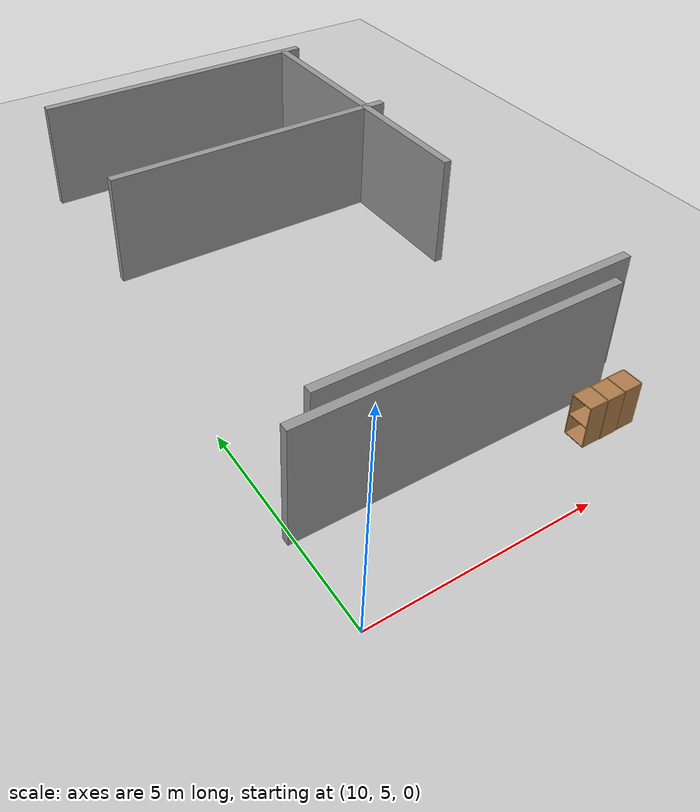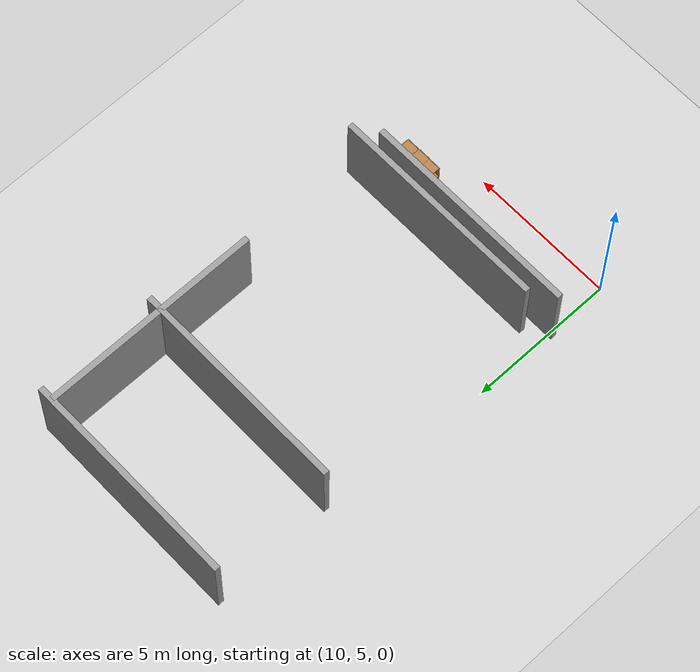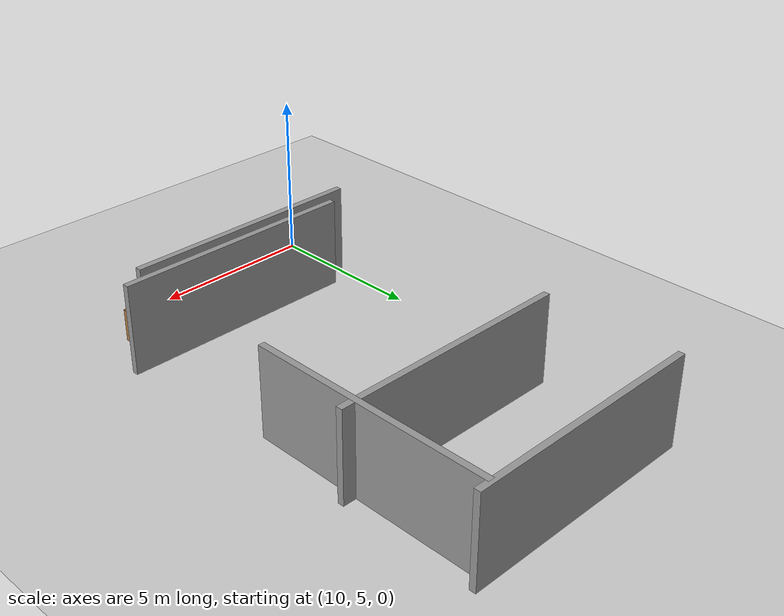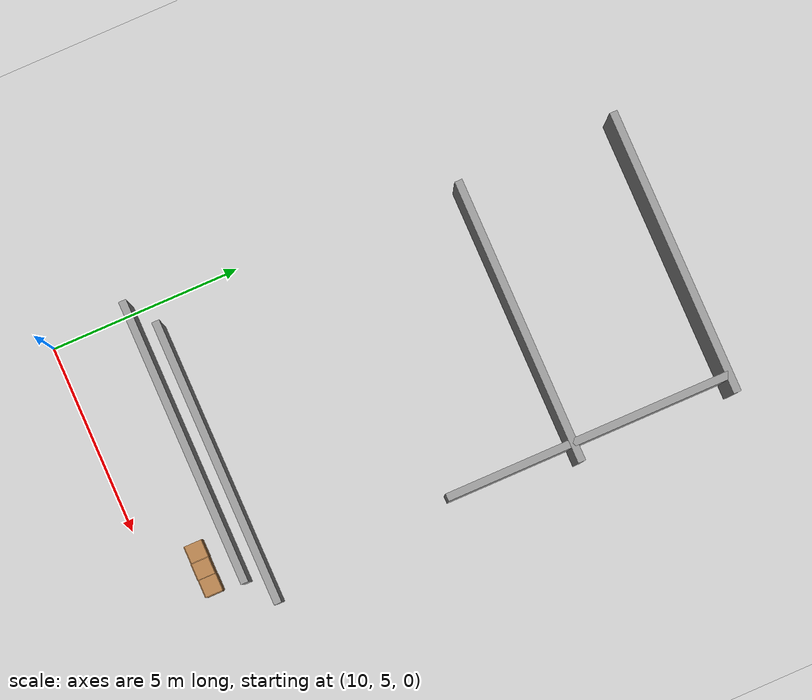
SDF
<sdf version="1.7">
 <world name="default">
  <model name="ground_plane">
   <static>1</static>
   <link name="link">
    <collision name="collision">
     <geometry><plane><normal>0 0 1</normal><size>100 100</size></plane></geometry>
     <surface><friction><ode><mu>100</mu><mu2>50</mu2></ode></friction></surface>
    </collision>
    <visual name="visual">
     <cast_shadows>0</cast_shadows>
     <geometry><plane><normal>0 0 1</normal><size>100 100</size></plane></geometry>
     <material>
      <script><uri>file://media/materials/scripts/gazebo.material</uri><name>Gazebo/Grey</name></script>
     </material>
    </visual>
   </link>
  </model>
  <model name="grey_wall_clone_clone_clone_0">
   <static>1</static>
   <link name="link">
    <pose>0 0 1.4 0 -0 0</pose>
    <collision name="collision"><geometry><box><size>7.5 0.2 2.8</size></box></geometry></collision>
    <visual name="visual">
     <cast_shadows>0</cast_shadows>
     <geometry><box><size>7.5 0.2 2.8</size></box></geometry>
     <material>
      <script>
       <uri>model://grey_wall/materials/scripts</uri>
       <uri>model://grey_wall/materials/textures</uri>
       <name>vrc/grey_wall</name>
      </script>
     </material>
    </visual>
   </link>
   <pose>14.1845 15.8562 0 0 -0 0</pose>
  </model>
  <model name="grey_wall_clone_clone_clone_1">
   <static>1</static>
   <link name="link">
    <pose>0 0 1.4 0 -0 0</pose>
    <collision name="collision"><geometry><box><size>7.5 0.2 2.8</size></box></geometry></collision>
    <visual name="visual">
     <cast_shadows>0</cast_shadows>
     <geometry><box><size>7.5 0.2 2.8</size></box></geometry>
     <material>
      <script>
       <uri>model://grey_wall/materials/scripts</uri>
       <uri>model://grey_wall/materials/textures</uri>
       <name>vrc/grey_wall</name>
      </script>
     </material>
    </visual>
   </link>
   <pose>14.154 20.0087 0 0 -0 0</pose>
  </model>
  <model name="grey_wall_clone_clone_clone_2">
   <static>1</static>
   <link name="link">
    <pose>0 0 1.4 0 -0 0</pose>
    <collision name="collision"><geometry><box><size>7.5 0.2 2.8</size></box></geometry></collision>
    <visual name="visual">
     <cast_shadows>0</cast_shadows>
     <geometry><box><size>7.5 0.2 2.8</size></box></geometry>
     <material>
      <script>
       <uri>model://grey_wall/materials/scripts</uri>
       <uri>model://grey_wall/materials/textures</uri>
       <name>vrc/grey_wall</name>
      </script>
     </material>
    </visual>
   </link>
   <pose>14.38 7.70432 0 0 -0 0</pose>
  </model>
  <model name="grey_wall_clone_clone_clone_2_clone_clone_0">
   <static>1</static>
   <link name="link">
    <pose>0 0 1.4 0 -0 0</pose>
    <collision name="collision"><geometry><box><size>7.5 0.2 2.8</size></box></geometry></collision>
    <visual name="visual">
     <cast_shadows>0</cast_shadows>
     <geometry><box><size>7.5 0.2 2.8</size></box></geometry>
     <material>
      <script>
       <uri>model://grey_wall/materials/scripts</uri>
       <uri>model://grey_wall/materials/textures</uri>
       <name>vrc/grey_wall</name>
      </script>
     </material>
    </visual>
   </link>
   <pose>17.4227 16.2454 0 0 0 -1.57221</pose>
  </model>
  <model name="grey_wall_clone_clone_clone_1_clone">
   <static>1</static>
   <link name="link">
    <pose>0 0 1.4 0 -0 0</pose>
    <collision name="collision"><geometry><box><size>7.5 0.2 2.8</size></box></geometry></collision>
    <visual name="visual">
     <cast_shadows>0</cast_shadows>
     <geometry><box><size>7.5 0.2 2.8</size></box></geometry>
     <material>
      <script>
       <uri>model://grey_wall/materials/scripts</uri>
       <uri>model://grey_wall/materials/textures</uri>
       <name>vrc/grey_wall</name>
      </script>
     </material>
    </visual>
   </link>
   <pose>13.5982 7.16128 0 0 -0 0</pose>
  </model>
  <model name="cabinet_0_clone_0">
   <static>1</static>
   <link name="cabinet_bottom_plate">
    <inertial>
     <pose>0 0 -1 0 -0 0</pose>
     <inertia><ixx>2.05</ixx><ixy>0</ixy><ixz>0</ixz><iyy>2.05</iyy><iyz>0</iyz><izz>2.05</izz></inertia>
     <mass>25</mass>
    </inertial>
    <collision name="cabinet_bottom_plate_geom">
     <pose>0 0 0.01 0 -0 0</pose>
     <geometry><box><size>0.45 0.45 0.02</size></box></geometry>
    </collision>
    <visual name="cabinet_bottom_plate_geom_visual">
     <pose>0 0 0.01 0 -0 0</pose>
     <geometry><box><size>0.45 0.45 0.02</size></box></geometry>
     <material>
      <script><uri>file://media/materials/scripts/gazebo.material</uri><name>Gazebo/Wood</name></script>
     </material>
    </visual>
    <collision name="cabinet_bottom_plate_geom_cabinet_back_plate">
     <pose>0.235 0 0.51 0 -0 0</pose>
     <geometry><box><size>0.02 0.45 1.02</size></box></geometry>
    </collision>
    <visual name="cabinet_bottom_plate_geom_cabinet_back_plate_visual">
     <pose>0.235 0 0.51 0 -0 0</pose>
     <geometry><box><size>0.02 0.45 1.02</size></box></geometry>
     <material>
      <script><uri>file://media/materials/scripts/gazebo.material</uri><name>Gazebo/Wood</name></script>
     </material>
    </visual>
    <collision name="cabinet_bottom_plate_geom_cabinet_left_plate">
     <pose>0 0.235 0.51 0 -0 0</pose>
     <geometry><box><size>0.45 0.02 1.02</size></box></geometry>
    </collision>
    <visual name="cabinet_bottom_plate_geom_cabinet_left_plate_visual">
     <pose>0 0.235 0.51 0 -0 0</pose>
     <geometry><box><size>0.45 0.02 1.02</size></box></geometry>
     <material>
      <script><uri>file://media/materials/scripts/gazebo.material</uri><name>Gazebo/Wood</name></script>
     </material>
    </visual>
    <collision name="cabinet_bottom_plate_geom_cabinet_middle_plate">
     <pose>0 0 0.51 0 -0 0</pose>
     <geometry><box><size>0.45 0.45 0.02</size></box></geometry>
    </collision>
    <visual name="cabinet_bottom_plate_geom_cabinet_middle_plate_visual">
     <pose>0 0 0.51 0 -0 0</pose>
     <geometry><box><size>0.45 0.45 0.02</size></box></geometry>
     <material>
      <script><uri>file://media/materials/scripts/gazebo.material</uri><name>Gazebo/Wood</name></script>
     </material>
    </visual>
    <collision name="cabinet_bottom_plate_geom_cabinet_right_plate">
     <pose>0 -0.235 0.51 0 -0 0</pose>
     <geometry><box><size>0.45 0.02 1.02</size></box></geometry>
    </collision>
    <visual name="cabinet_bottom_plate_geom_cabinet_right_plate_visual">
     <pose>0 -0.235 0.51 0 -0 0</pose>
     <geometry><box><size>0.45 0.02 1.02</size></box></geometry>
     <material>
      <script><uri>file://media/materials/scripts/gazebo.material</uri><name>Gazebo/Wood</name></script>
     </material>
    </visual>
    <collision name="cabinet_bottom_plate_geom_cabinet_top_plate">
     <pose>0 0 1.01 0 -0 0</pose>
     <geometry><box><size>0.45 0.45 0.02</size></box></geometry>
    </collision>
    <visual name="cabinet_bottom_plate_geom_cabinet_top_plate_visual">
     <pose>0 0 1.01 0 -0 0</pose>
     <geometry><box><size>0.45 0.45 0.02</size></box></geometry>
     <material>
      <script><uri>file://media/materials/scripts/gazebo.material</uri><name>Gazebo/Wood</name></script>
     </material>
    </visual>
   </link>
   <pose>17.0358 6.30213 0 0 -0 0</pose>
  </model>
  <model name="cabinet_0_clone_1">
   <static>1</static>
   <link name="cabinet_bottom_plate">
    <inertial>
     <pose>0 0 -1 0 -0 0</pose>
     <inertia><ixx>2.05</ixx><ixy>0</ixy><ixz>0</ixz><iyy>2.05</iyy><iyz>0</iyz><izz>2.05</izz></inertia>
     <mass>25</mass>
    </inertial>
    <collision name="cabinet_bottom_plate_geom">
     <pose>0 0 0.01 0 -0 0</pose>
     <geometry><box><size>0.45 0.45 0.02</size></box></geometry>
    </collision>
    <visual name="cabinet_bottom_plate_geom_visual">
     <pose>0 0 0.01 0 -0 0</pose>
     <geometry><box><size>0.45 0.45 0.02</size></box></geometry>
     <material>
      <script><uri>file://media/materials/scripts/gazebo.material</uri><name>Gazebo/Wood</name></script>
     </material>
    </visual>
    <collision name="cabinet_bottom_plate_geom_cabinet_back_plate">
     <pose>0.235 0 0.51 0 -0 0</pose>
     <geometry><box><size>0.02 0.45 1.02</size></box></geometry>
    </collision>
    <visual name="cabinet_bottom_plate_geom_cabinet_back_plate_visual">
     <pose>0.235 0 0.51 0 -0 0</pose>
     <geometry><box><size>0.02 0.45 1.02</size></box></geometry>
     <material>
      <script><uri>file://media/materials/scripts/gazebo.material</uri><name>Gazebo/Wood</name></script>
     </material>
    </visual>
    <collision name="cabinet_bottom_plate_geom_cabinet_left_plate">
     <pose>0 0.235 0.51 0 -0 0</pose>
     <geometry><box><size>0.45 0.02 1.02</size></box></geometry>
    </collision>
    <visual name="cabinet_bottom_plate_geom_cabinet_left_plate_visual">
     <pose>0 0.235 0.51 0 -0 0</pose>
     <geometry><box><size>0.45 0.02 1.02</size></box></geometry>
     <material>
      <script><uri>file://media/materials/scripts/gazebo.material</uri><name>Gazebo/Wood</name></script>
     </material>
    </visual>
    <collision name="cabinet_bottom_plate_geom_cabinet_middle_plate">
     <pose>0 0 0.51 0 -0 0</pose>
     <geometry><box><size>0.45 0.45 0.02</size></box></geometry>
    </collision>
    <visual name="cabinet_bottom_plate_geom_cabinet_middle_plate_visual">
     <pose>0 0 0.51 0 -0 0</pose>
     <geometry><box><size>0.45 0.45 0.02</size></box></geometry>
     <material>
      <script><uri>file://media/materials/scripts/gazebo.material</uri><name>Gazebo/Wood</name></script>
     </material>
    </visual>
    <collision name="cabinet_bottom_plate_geom_cabinet_right_plate">
     <pose>0 -0.235 0.51 0 -0 0</pose>
     <geometry><box><size>0.45 0.02 1.02</size></box></geometry>
    </collision>
    <visual name="cabinet_bottom_plate_geom_cabinet_right_plate_visual">
     <pose>0 -0.235 0.51 0 -0 0</pose>
     <geometry><box><size>0.45 0.02 1.02</size></box></geometry>
     <material>
      <script><uri>file://media/materials/scripts/gazebo.material</uri><name>Gazebo/Wood</name></script>
     </material>
    </visual>
    <collision name="cabinet_bottom_plate_geom_cabinet_top_plate">
     <pose>0 0 1.01 0 -0 0</pose>
     <geometry><box><size>0.45 0.45 0.02</size></box></geometry>
    </collision>
    <visual name="cabinet_bottom_plate_geom_cabinet_top_plate_visual">
     <pose>0 0 1.01 0 -0 0</pose>
     <geometry><box><size>0.45 0.45 0.02</size></box></geometry>
     <material>
      <script><uri>file://media/materials/scripts/gazebo.material</uri><name>Gazebo/Wood</name></script>
     </material>
    </visual>
   </link>
   <pose>16.5725 6.29556 0 0 -0 0</pose>
  </model>
  <model name="cabinet_0_clone_2">
   <static>1</static>
   <link name="cabinet_bottom_plate">
    <inertial>
     <pose>0 0 -1 0 -0 0</pose>
     <inertia><ixx>2.05</ixx><ixy>0</ixy><ixz>0</ixz><iyy>2.05</iyy><iyz>0</iyz><izz>2.05</izz></inertia>
     <mass>25</mass>
    </inertial>
    <collision name="cabinet_bottom_plate_geom">
     <pose>0 0 0.01 0 -0 0</pose>
     <geometry><box><size>0.45 0.45 0.02</size></box></geometry>
    </collision>
    <visual name="cabinet_bottom_plate_geom_visual">
     <pose>0 0 0.01 0 -0 0</pose>
     <geometry><box><size>0.45 0.45 0.02</size></box></geometry>
     <material>
      <script><uri>file://media/materials/scripts/gazebo.material</uri><name>Gazebo/Wood</name></script>
     </material>
    </visual>
    <collision name="cabinet_bottom_plate_geom_cabinet_back_plate">
     <pose>0.235 0 0.51 0 -0 0</pose>
     <geometry><box><size>0.02 0.45 1.02</size></box></geometry>
    </collision>
    <visual name="cabinet_bottom_plate_geom_cabinet_back_plate_visual">
     <pose>0.235 0 0.51 0 -0 0</pose>
     <geometry><box><size>0.02 0.45 1.02</size></box></geometry>
     <material>
      <script><uri>file://media/materials/scripts/gazebo.material</uri><name>Gazebo/Wood</name></script>
     </material>
    </visual>
    <collision name="cabinet_bottom_plate_geom_cabinet_left_plate">
     <pose>0 0.235 0.51 0 -0 0</pose>
     <geometry><box><size>0.45 0.02 1.02</size></box></geometry>
    </collision>
    <visual name="cabinet_bottom_plate_geom_cabinet_left_plate_visual">
     <pose>0 0.235 0.51 0 -0 0</pose>
     <geometry><box><size>0.45 0.02 1.02</size></box></geometry>
     <material>
      <script><uri>file://media/materials/scripts/gazebo.material</uri><name>Gazebo/Wood</name></script>
     </material>
    </visual>
    <collision name="cabinet_bottom_plate_geom_cabinet_middle_plate">
     <pose>0 0 0.51 0 -0 0</pose>
     <geometry><box><size>0.45 0.45 0.02</size></box></geometry>
    </collision>
    <visual name="cabinet_bottom_plate_geom_cabinet_middle_plate_visual">
     <pose>0 0 0.51 0 -0 0</pose>
     <geometry><box><size>0.45 0.45 0.02</size></box></geometry>
     <material>
      <script><uri>file://media/materials/scripts/gazebo.material</uri><name>Gazebo/Wood</name></script>
     </material>
    </visual>
    <collision name="cabinet_bottom_plate_geom_cabinet_right_plate">
     <pose>0 -0.235 0.51 0 -0 0</pose>
     <geometry><box><size>0.45 0.02 1.02</size></box></geometry>
    </collision>
    <visual name="cabinet_bottom_plate_geom_cabinet_right_plate_visual">
     <pose>0 -0.235 0.51 0 -0 0</pose>
     <geometry><box><size>0.45 0.02 1.02</size></box></geometry>
     <material>
      <script><uri>file://media/materials/scripts/gazebo.material</uri><name>Gazebo/Wood</name></script>
     </material>
    </visual>
    <collision name="cabinet_bottom_plate_geom_cabinet_top_plate">
     <pose>0 0 1.01 0 -0 0</pose>
     <geometry><box><size>0.45 0.45 0.02</size></box></geometry>
    </collision>
    <visual name="cabinet_bottom_plate_geom_cabinet_top_plate_visual">
     <pose>0 0 1.01 0 -0 0</pose>
     <geometry><box><size>0.45 0.45 0.02</size></box></geometry>
     <material>
      <script><uri>file://media/materials/scripts/gazebo.material</uri><name>Gazebo/Wood</name></script>
     </material>
    </visual>
   </link>
   <pose>16.1249 6.30494 0 0 -0 0</pose>
  </model>
 </world>
</sdf>
